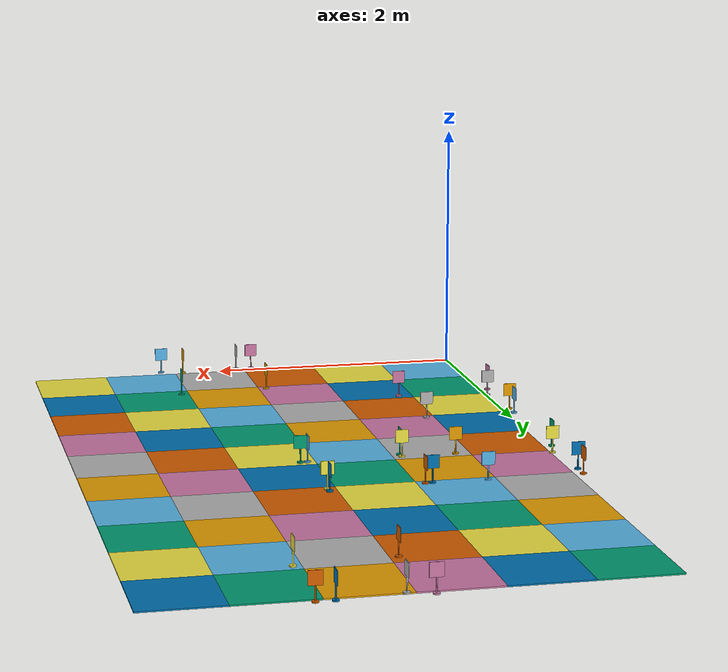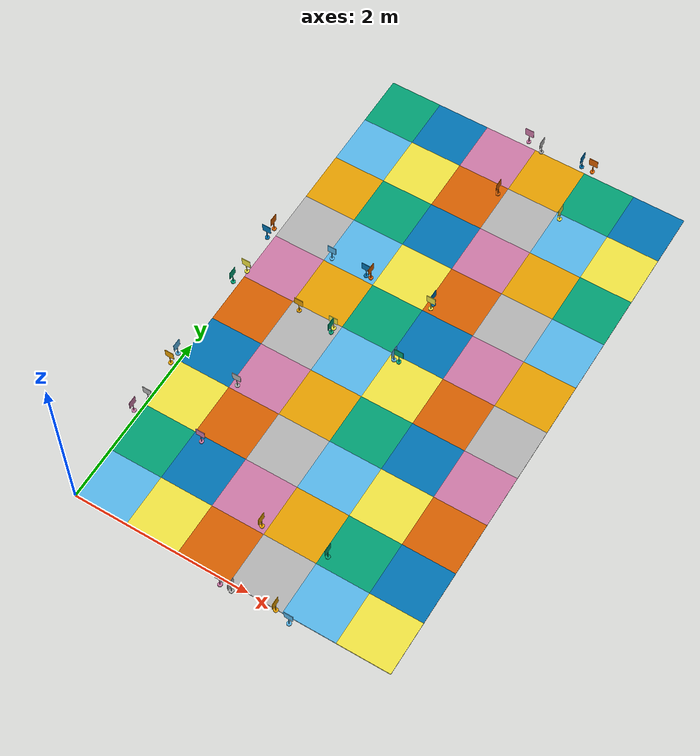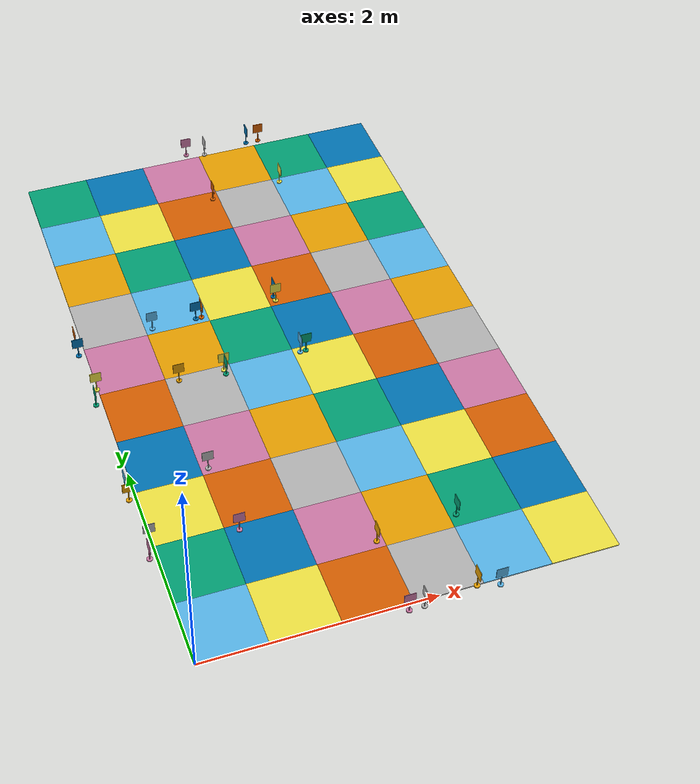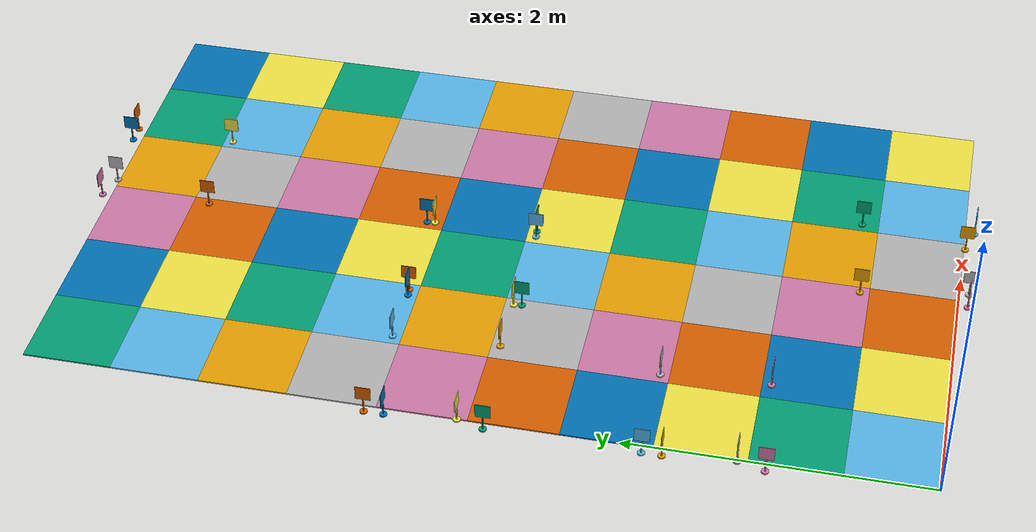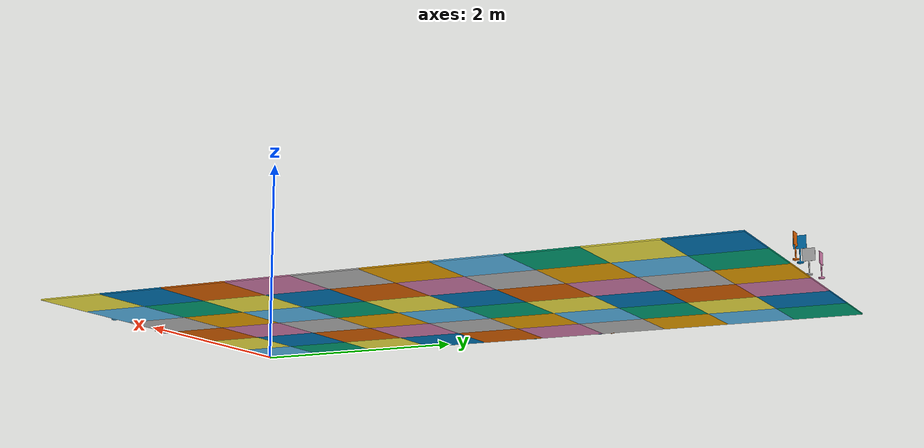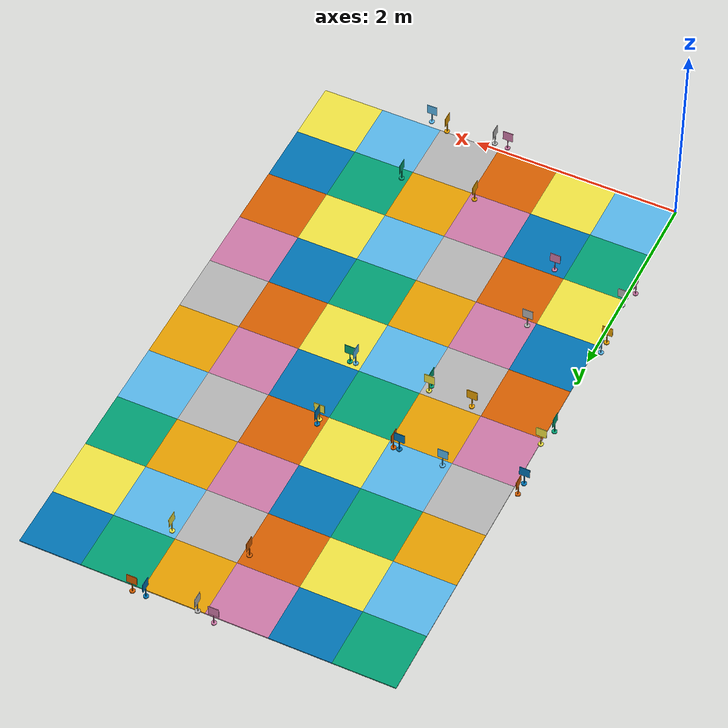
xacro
<?xml version="1.0" ?>
    <!--WARNING: This file was auto-generated by csv2xacro_node.py. It should not be edited by hand.-->
    <robot name="duckietown" xmlns:xacro="http://www.ros.org/wiki/xacro">
        <!--Parameters-->
        <xacro:property name="tile_width" value="0.595"/>
        <xacro:property name="pos_0" value="0.09 0.035"/>
        <xacro:property name="pos_1" value="0.035 0.09"/>
        <xacro:property name="pos_2" value="-0.035 0.09"/>
        <xacro:property name="pos_3" value="-0.09 0.035"/>
        <xacro:property name="pos_4" value="-0.09 -0.035"/>
        <xacro:property name="pos_5" value="-0.035 -0.09"/>
        <xacro:property name="pos_6" value="0.035 -0.09"/>
        <xacro:property name="pos_7" value="0.09 -0.035"/>
        <!--Include the tile and tag macros-->
        <xacro:include filename="$(find duckietown_description)/urdf/macros.urdf.xacro"/>
        <!--The world frame is at the lower left corner of duckietown-->
        <link name="world"/>
        <!--Describe the tiles-->
        <xacro:tile rotation="270" type="turn" x="0" y="0"/>
        <xacro:tile rotation="90" type="straight" x="0" y="1"/>
        <xacro:tile rotation="270" type="3way" x="0" y="2"/>
        <xacro:tile rotation="90" type="straight" x="0" y="3"/>
        <xacro:tile rotation="90" type="straight" x="0" y="4"/>
        <xacro:tile rotation="270" type="3way" x="0" y="5"/>
        <xacro:tile rotation="90" type="straight" x="0" y="6"/>
        <xacro:tile rotation="90" type="straight" x="0" y="7"/>
        <xacro:tile rotation="90" type="straight" x="0" y="8"/>
        <xacro:tile rotation="180" type="turn" x="0" y="9"/>
        <xacro:tile rotation="0" type="straight" x="1" y="0"/>
        <xacro:tile rotation="0" type="empty" x="1" y="1"/>
        <xacro:tile rotation="0" type="straight" x="1" y="2"/>
        <xacro:tile rotation="0" type="pond" x="1" y="3"/>
        <xacro:tile rotation="0" type="halfpond" x="1" y="4"/>
        <xacro:tile rotation="0" type="straight" x="1" y="5"/>
        <xacro:tile rotation="0" type="empty" x="1" y="6"/>
        <xacro:tile rotation="0" type="empty" x="1" y="7"/>
        <xacro:tile rotation="0" type="empty" x="1" y="8"/>
        <xacro:tile rotation="0" type="straight" x="1" y="9"/>
        <xacro:tile rotation="0" type="straight" x="2" y="0"/>
        <xacro:tile rotation="0" type="empty" x="2" y="1"/>
        <xacro:tile rotation="0" type="turn" x="2" y="2"/>
        <xacro:tile rotation="90" type="straight" x="2" y="3"/>
        <xacro:tile rotation="90" type="straight" x="2" y="4"/>
        <xacro:tile rotation="0" type="4way" x="2" y="5"/>
        <xacro:tile rotation="90" type="straight" x="2" y="6"/>
        <xacro:tile rotation="180" type="turn" x="2" y="7"/>
        <xacro:tile rotation="0" type="empty" x="2" y="8"/>
        <xacro:tile rotation="0" type="straight" x="2" y="9"/>
        <xacro:tile rotation="0" type="3way" x="3" y="0"/>
        <xacro:tile rotation="90" type="straight" x="3" y="1"/>
        <xacro:tile rotation="90" type="straight" x="3" y="2"/>
        <xacro:tile rotation="180" type="turn" x="3" y="3"/>
        <xacro:tile rotation="0" type="empty" x="3" y="4"/>
        <xacro:tile rotation="0" type="straight" x="3" y="5"/>
        <xacro:tile rotation="0" type="empty" x="3" y="6"/>
        <xacro:tile rotation="0" type="turn" x="3" y="7"/>
        <xacro:tile rotation="90" type="straight" x="3" y="8"/>
        <xacro:tile rotation="180" type="3way" x="3" y="9"/>
        <xacro:tile rotation="0" type="straight" x="4" y="0"/>
        <xacro:tile rotation="0" type="empty" x="4" y="1"/>
        <xacro:tile rotation="0" type="empty" x="4" y="2"/>
        <xacro:tile rotation="0" type="straight" x="4" y="3"/>
        <xacro:tile rotation="0" type="empty" x="4" y="4"/>
        <xacro:tile rotation="0" type="turn" x="4" y="5"/>
        <xacro:tile rotation="90" type="straight" x="4" y="6"/>
        <xacro:tile rotation="90" type="straight" x="4" y="7"/>
        <xacro:tile rotation="180" type="turn" x="4" y="8"/>
        <xacro:tile rotation="0" type="straight" x="4" y="9"/>
        <xacro:tile rotation="0" type="turn" x="5" y="0"/>
        <xacro:tile rotation="90" type="straight" x="5" y="1"/>
        <xacro:tile rotation="90" type="straight" x="5" y="2"/>
        <xacro:tile rotation="90" type="turn" x="5" y="3"/>
        <xacro:tile rotation="0" type="empty" x="5" y="4"/>
        <xacro:tile rotation="0" type="empty" x="5" y="5"/>
        <xacro:tile rotation="0" type="empty" x="5" y="6"/>
        <xacro:tile rotation="0" type="empty" x="5" y="7"/>
        <xacro:tile rotation="0" type="turn" x="5" y="8"/>
        <xacro:tile rotation="90" type="turn" x="5" y="9"/>
        <!--Empty border tiles-->
        <xacro:tile visible="false" x="0" y="10"/>
        <xacro:tile visible="false" x="1" y="10"/>
        <xacro:tile visible="false" x="2" y="10"/>
        <xacro:tile visible="false" x="3" y="10"/>
        <xacro:tile visible="false" x="4" y="10"/>
        <xacro:tile visible="false" x="5" y="10"/>
        <xacro:tile visible="false" x="6" y="10"/>
        <xacro:tile visible="false" x="6" y="0"/>
        <xacro:tile visible="false" x="6" y="1"/>
        <xacro:tile visible="false" x="6" y="2"/>
        <xacro:tile visible="false" x="6" y="3"/>
        <xacro:tile visible="false" x="6" y="4"/>
        <xacro:tile visible="false" x="6" y="5"/>
        <xacro:tile visible="false" x="6" y="6"/>
        <xacro:tile visible="false" x="6" y="7"/>
        <xacro:tile visible="false" x="6" y="8"/>
        <xacro:tile visible="false" x="6" y="9"/>
        <!--Describe the tags-->
        <xacro:tag id="33" pos="${pos_5}" rotation="0" x="0" y="2"/>
        <xacro:tag id="62" pos="${pos_2}" rotation="90" x="0" y="2"/>
        <xacro:tag id="31" pos="${pos_5}" rotation="270" x="0" y="3"/>
        <xacro:tag id="68" pos="${pos_2}" rotation="0" x="0" y="3"/>
        <xacro:tag id="39" pos="${pos_5}" rotation="0" x="0" y="5"/>
        <xacro:tag id="63" pos="${pos_2}" rotation="90" x="0" y="5"/>
        <xacro:tag id="41" pos="${pos_5}" rotation="270" x="0" y="6"/>
        <xacro:tag id="67" pos="${pos_2}" rotation="0" x="0" y="6"/>
        <xacro:tag id="28" pos="${pos_7}" rotation="90" x="1" y="2"/>
        <xacro:tag id="58" pos="${pos_0}" rotation="270" x="1" y="3"/>
        <xacro:tag id="119" pos="${pos_7}" rotation="90" x="1" y="5"/>
        <xacro:tag id="60" pos="${pos_0}" rotation="270" x="1" y="6"/>
        <xacro:tag id="72" pos="${pos_5}" rotation="0" x="2" y="5"/>
        <xacro:tag id="51" pos="${pos_4}" rotation="90" x="2" y="5"/>
        <xacro:tag id="71" pos="${pos_3}" rotation="270" x="2" y="6"/>
        <xacro:tag id="53" pos="${pos_2}" rotation="0" x="2" y="6"/>
        <xacro:tag id="65" pos="${pos_4}" rotation="90" x="3" y="0"/>
        <xacro:tag id="30" pos="${pos_7}" rotation="0" x="3" y="0"/>
        <xacro:tag id="9" pos="${pos_2}" rotation="0" x="3" y="1"/>
        <xacro:tag id="52" pos="${pos_6}" rotation="180" x="3" y="5"/>
        <xacro:tag id="70" pos="${pos_7}" rotation="90" x="3" y="5"/>
        <xacro:tag id="49" pos="${pos_0}" rotation="270" x="3" y="6"/>
        <xacro:tag id="78" pos="${pos_1}" rotation="180" x="3" y="6"/>
        <xacro:tag id="38" pos="${pos_5}" rotation="0" x="3" y="9"/>
        <xacro:tag id="1" pos="${pos_3}" rotation="270" x="3" y="10"/>
        <xacro:tag id="64" pos="${pos_0}" rotation="0" x="3" y="10"/>
        <xacro:tag id="61" pos="${pos_4}" rotation="180" x="4" y="0"/>
        <xacro:tag id="36" pos="${pos_7}" rotation="90" x="4" y="0"/>
        <xacro:tag id="35" pos="${pos_1}" rotation="180" x="4" y="1"/>
        <xacro:tag id="57" pos="${pos_6}" rotation="180" x="4" y="9"/>
        <xacro:tag id="32" pos="${pos_3}" rotation="180" x="4" y="10"/>
        <xacro:tag id="66" pos="${pos_0}" rotation="270" x="4" y="10"/>
    </robot>

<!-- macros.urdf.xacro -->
<robot name="macros" xmlns:xacro="http://www.ros.org/wiki/xacro">
    <xacro:property name="pi" value="3.14159265359" />
    <xacro:property name="tile_thickness" value="0.01" />

    <!-- Defines a tile link and joint-->
    <xacro:macro name="tile" params="x y type:=empty rotation:=0 visible:=true">
        <link name="tile_${x}_${y}">
            <xacro:if value="${visible}" >
                <visual>
                    <origin xyz="${tile_width/2} ${tile_width/2} ${-tile_thickness/2}" rpy="0 0 ${rotation * pi/180}"/>
                    <geometry>
                        <mesh filename="package://duckietown_description/urdf/meshes/${type}.dae" />
                    </geometry>
                </visual>
            </xacro:if>
        </link>

        <joint name="world_to_tile_${x}_${y}" type="fixed">
            <parent link="world" />
            <child link="tile_${x}_${y}" />
            <origin xyz="${tile_width * x} ${tile_width * y} 0" />
        </joint>
    </xacro:macro>

    <!-- Defines an april tag link and joint-->
    <xacro:macro name="tag" params="id x y pos rotation">
        <link name="tag_${id}">
            <visual>
                <origin xyz="-0.0254 -0.0254 0" />
                <geometry>
                    <mesh filename="package://duckietown_description/urdf/meshes/tags/tag_${id}.dae" />
                </geometry>
            </visual>
        </link>

        <joint name="world_to_tag_${id}" type="fixed">
            <parent link="tile_${x}_${y}" />
            <child link="tag_${id}" />
            <origin xyz="${pos} 0" rpy="0 0 ${rotation * pi/180}"/>
        </joint>
    </xacro:macro>
</robot>
